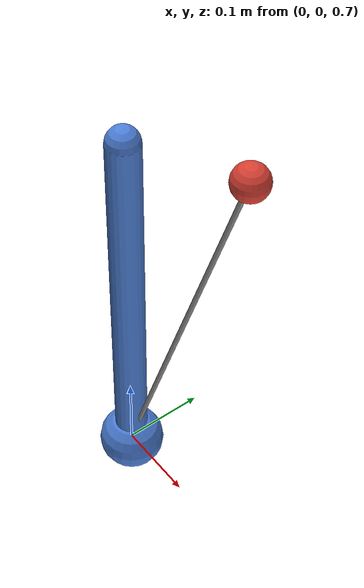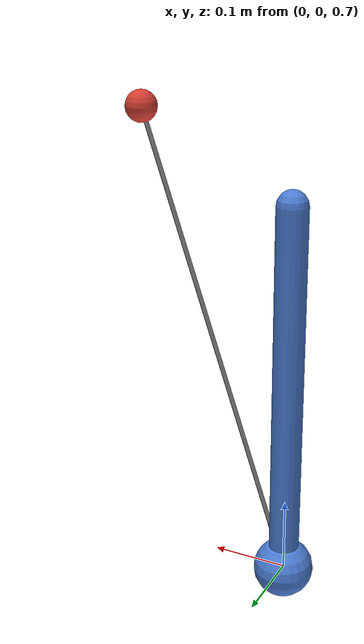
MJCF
<mujoco model="tendon-limits">
  <option gravity="0 0 -4.0" timestep="0.002"/>
  <compiler angle="degree"/>

  <worldbody>
    <!-- Fixed anchor: above and right of the pivot. The pendulum swings
         below the pivot so the arm never passes through the anchor. -->
    <body name="anchor_body" pos="0.2 0 1.3">
      <geom name="anchor_geom" type="sphere" size="0.02"
            rgba="0.85 0.25 0.2 1" contype="0" conaffinity="0"/>
      <site name="anchor" pos="0 0 0" size="0.012" rgba="1 1 0 1"/>
    </body>

    <!-- Pendulum: starts tilted toward the anchor (short tendon) -->
    <body name="pivot" pos="0 0 1.2">
      <joint name="hinge" type="hinge" axis="0 1 0" damping="0.01"
             ref="-90"/>
      <geom name="rod" type="capsule" fromto="0 0 0 0 0 -0.5"
            size="0.02" mass="0.3" rgba="0.3 0.5 0.85 1"/>
      <body name="tip" pos="0 0 -0.5">
        <geom name="ball" type="sphere" size="0.04" mass="0.5"
              rgba="0.3 0.5 0.85 1"/>
        <site name="tip_site" pos="0 0 0" size="0.012" rgba="1 1 0 1"/>
      </body>
    </body>
  </worldbody>

  <tendon>
    <spatial name="tether" limited="true" range="0.0 0.65">
      <site site="anchor"/>
      <site site="tip_site"/>
    </spatial>
  </tendon>

  <sensor>
    <tendonpos name="ten_pos" tendon="tether"/>
    <tendonlimitfrc name="ten_lf" tendon="tether"/>
  </sensor>
</mujoco>
